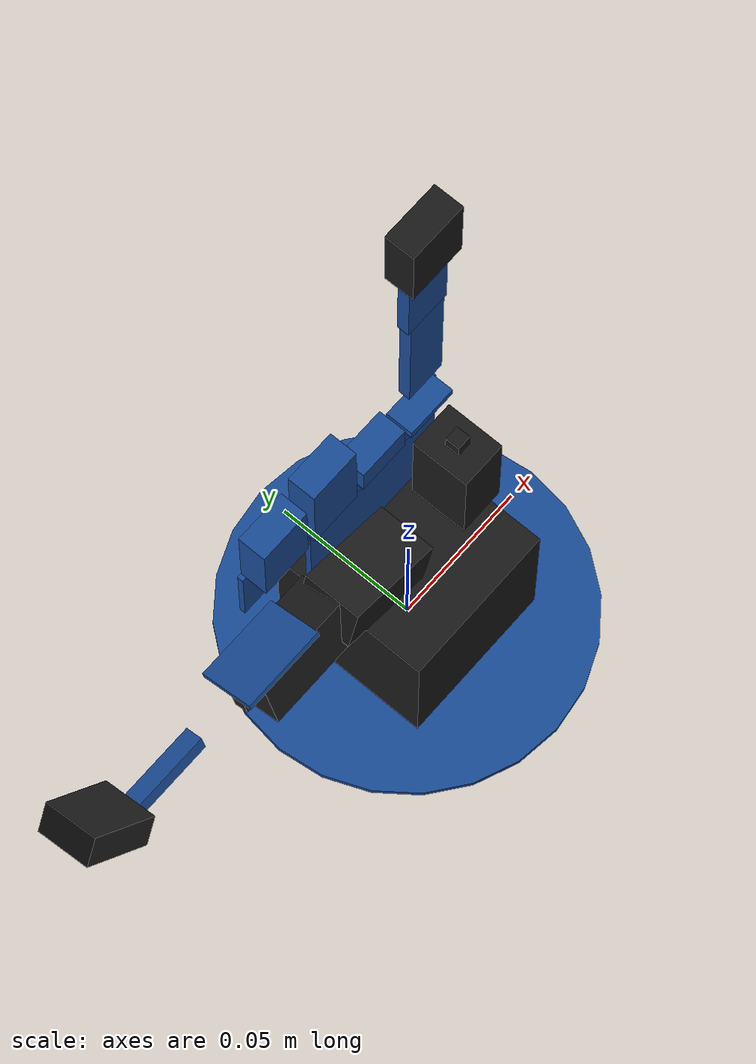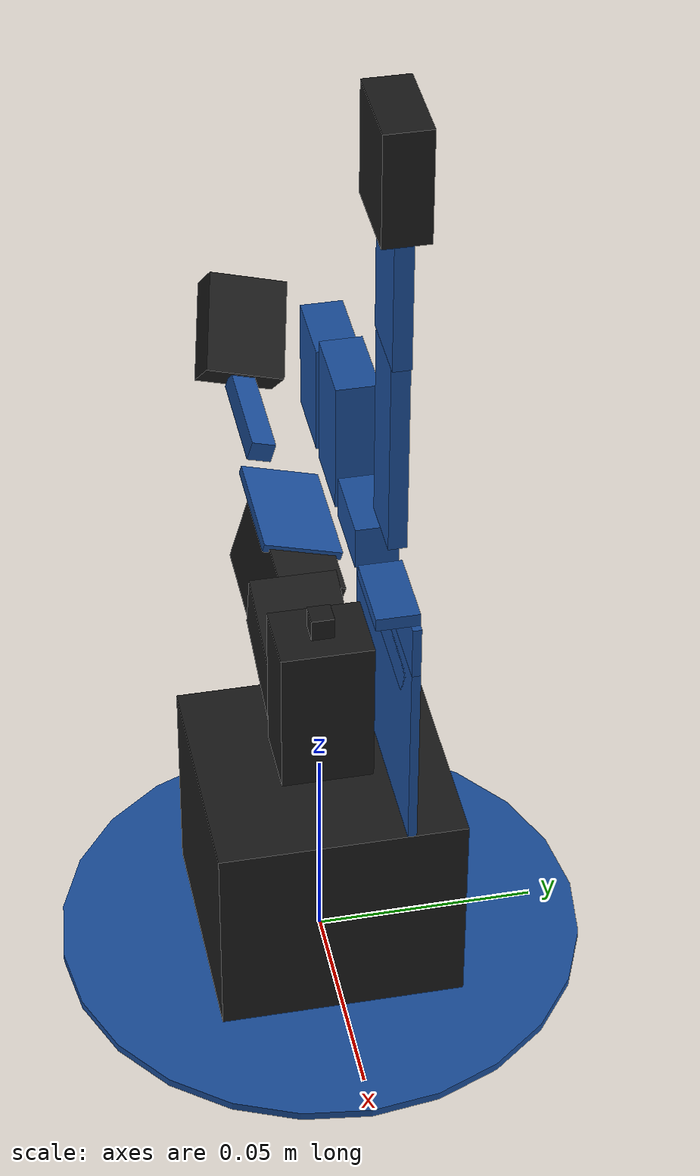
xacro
<?xml version="1.0"?>

<robot xmlns:xacro="http://www.ros.org/wiki/xacro" name="ar10">
<!--robot name="ar10"> -->

<!--****************WRIST PLATE************************* -->
  <xacro:property name="wrist_length" value=".002" />
  <xacro:property name="wrist_radius" value=".06" />
  <link name="wrist_plate">
    <visual>
      <geometry>
        <cylinder length="${wrist_length}" radius="${wrist_radius}"/>
      </geometry>
      <material name="blue">
        <color rgba=".1 .3 .6 1"/>
      </material>
    </visual>
    <collision>
      <geometry>
        <cylinder length="${wrist_length}" radius="${wrist_radius}"/>
      </geometry>
    </collision>
  </link>

<!--****************CIRCUIT BOARD*************************-->
  <xacro:property name="circuit_support_x" value=".0555" />
  <xacro:property name="circuit_support_y" value=".0555" />
  <xacro:property name="circuit_support_z" value=".05" />
  <link name="circuit_support">
    <visual>
      <geometry>
        <box size="${circuit_support_x} ${circuit_support_y} ${circuit_support_z}"/>
      </geometry>
      <origin xyz="0 0 0"/>
      <material name="black">
        <color rgba=".1 .1 .1 1"/>
      </material>
    </visual>
    <collision>
      <geometry>
        <box size="${circuit_support_x} ${circuit_support_y} ${circuit_support_z}"/>
      </geometry>
    </collision>
    <inertial>
      <mass value="1"/>
      <inertia ixx="0.4" ixy="0.0" ixz="0.0" iyy="0.4" iyz="0.0" izz="0.2"/>
    </inertial>
  </link>

  <joint name="wrist_plate_to_circuit_support" type="fixed">
    <parent link="wrist_plate"/>
    <child link="circuit_support"/>
    <origin xyz="0 0 .026"/>
  </joint>
<!--****************PALM*************************-->
  <xacro:property name="palm1_x" value=".0555" />
  <xacro:property name="palm1_y" value=".002" />
  <xacro:property name="palm1_z" value=".0463" /> define palm1 parameters
  <xacro:property name="palm2_x" value=".084" />
  <xacro:property name="palm2_y" value=".002" />
  <xacro:property name="palm2_z" value=".025" /> define palm2 parameters
  <xacro:property name="knuckle1_x" value=".018" />
  <xacro:property name="knuckle1_y" value=".0095" />
  <xacro:property name="knuckle1_z" value=".003" /> define knuckle 1 parameters
  <xacro:property name="knuckle2_x" value=".018" />
  <xacro:property name="knuckle2_y" value=".0095" />
  <xacro:property name="knuckle2_z" value=".01" /> define knuckle 2 parameters
  <xacro:property name="knuckle3_x" value=".018" />
  <xacro:property name="knuckle3_y" value=".0095" />
  <xacro:property name="knuckle3_z" value=".031" /> define knuckle 3 parameters
  <xacro:property name="knuckle4_x" value=".018" />
  <xacro:property name="knuckle4_y" value=".0095" />
  <xacro:property name="knuckle4_z" value=".026" /> define knuckle 4 parameters

  <link name="palm1">
    <visual>
      <geometry>
        <box size="${palm1_x} ${palm1_y} ${palm1_z}"/>
      </geometry>
      <origin xyz="0 0 0"/>
      <material name="blue">
      </material>
    </visual>
    <collision>
      <geometry>
        <box size="${palm1_x} ${palm1_y} ${palm1_z}"/>
      </geometry>
    </collision>
    <inertial>
      <mass value="1"/>
      <inertia ixx="0.4" ixy="0.0" ixz="0.0" iyy="0.4" iyz="0.0" izz="0.2"/>
    </inertial>
  </link>

  <joint name="circuit_support_to_palm1" type="fixed">
    <parent link="circuit_support"/>
    <child link="palm1"/>
    <origin xyz="0 .015 .04815"/>
  </joint>

  <link name="palm2">
    <visual>
      <geometry>
        <box size="${palm2_x} ${palm2_y} ${palm2_z}"/>
      </geometry>
      <origin xyz="0 0 0"/>
      <material name="blue">
      </material>
    </visual>
    <collision>
      <geometry>
        <box size="${palm2_x} ${palm2_y} ${palm2_z}"/>
      </geometry>
    </collision>
    <inertial>
      <mass value="1"/>
      <inertia ixx="0.4" ixy="0.0" ixz="0.0" iyy="0.4" iyz="0.0" izz="0.2"/>
    </inertial>
  </link>

  <joint name="palm1_to_palm2" type="fixed">
    <parent link="palm1"/>
    <child link="palm2"/>
    <origin xyz="-.01425 0 .02315"/>
  </joint>

  <link name="knuckle1">
    <visual>
      <geometry>
        <box size="${knuckle1_x} ${knuckle1_y} ${knuckle1_z}"/>
      </geometry>
      <origin xyz="0 0 0"/>
      <material name="blue">
      </material>
    </visual>
    <collision>
      <geometry>
        <box size="${knuckle1_x} ${knuckle1_y} ${knuckle1_z}"/>
      </geometry>
    </collision>
    <inertial>
      <mass value="1"/>
      <inertia ixx="0.4" ixy="0.0" ixz="0.0" iyy="0.4" iyz="0.0" izz="0.2"/>
    </inertial>
  </link>

  <joint name="palm2_to_knuckle1" type="fixed">
    <parent link="palm2"/>
    <child link="knuckle1"/>
    <origin xyz="0.0315 -.00375 .014"/>
  </joint>

  <link name="knuckle2">
    <visual>
      <geometry>
        <box size="${knuckle2_x} ${knuckle2_y} ${knuckle2_z}"/>
      </geometry>
      <origin xyz="0 0 0"/>
      <material name="blue">
      </material>
    </visual>
    <collision>
      <geometry>
        <box size="${knuckle2_x} ${knuckle2_y} ${knuckle2_z}"/>
      </geometry>
    </collision>
    <inertial>
      <mass value="1"/>
      <inertia ixx="0.4" ixy="0.0" ixz="0.0" iyy="0.4" iyz="0.0" izz="0.2"/>
    </inertial>
  </link>

  <joint name="palm2_to_knuckle2" type="fixed">
    <parent link="palm2"/>
    <child link="knuckle2"/>
    <origin xyz="0.0105 -.00375 .0175"/>
  </joint>

  <link name="knuckle3">
    <visual>
      <geometry>
        <box size="${knuckle3_x} ${knuckle3_y} ${knuckle3_z}"/>
      </geometry>
      <origin xyz="0 0 0"/>
      <material name="blue">
      </material>
    </visual>
    <collision>
      <geometry>
        <box size="${knuckle3_x} ${knuckle3_y} ${knuckle3_z}"/>
      </geometry>
    </collision>
    <inertial>
      <mass value="1"/>
      <inertia ixx="0.4" ixy="0.0" ixz="0.0" iyy="0.4" iyz="0.0" izz="0.2"/>
    </inertial>
  </link>

  <joint name="palm2_to_knuckle3" type="fixed">
    <parent link="palm2"/>
    <child link="knuckle3"/>
    <origin xyz="-.0105 -.00375 0.028"/>
  </joint>

  <link name="knuckle4">
    <visual>
      <geometry>
        <box size="${knuckle4_x} ${knuckle4_y} ${knuckle4_z}"/>
      </geometry>
      <origin xyz="0 0 0"/>
      <material name="blue">
      </material>
    </visual>
    <collision>
      <geometry>
        <box size="${knuckle4_x} ${knuckle4_y} ${knuckle4_z}"/>
      </geometry>
    </collision>
    <inertial>
      <mass value="1"/>
      <inertia ixx="0.4" ixy="0.0" ixz="0.0" iyy="0.4" iyz="0.0" izz="0.2"/>
    </inertial>
  </link>

  <joint name="palm2_to_knuckle4" type="fixed">
    <parent link="palm2"/>
    <child link="knuckle4"/>
    <origin xyz="-.0315 -.00375 .0255"/>
  </joint>
<!--****************FINGERS*************************-->
  <xacro:property name="fingera_x" value=".014" />
  <xacro:property name="fingera_y" value=".004" />
  <xacro:property name="fingera_z" value=".045" />
  <xacro:property name="fingerb_x" value=".016" />
  <xacro:property name="fingerb_y" value=".004" />
  <xacro:property name="fingerb_z" value=".03" />
  <xacro:property name="fingerc_x" value=".02" />
  <xacro:property name="fingerc_y" value=".01" />
  <xacro:property name="fingerc_z" value=".025" /> define fingers

  <link name="finger1a">
    <visual>
      <geometry>
        <box size="${fingera_x} ${fingera_y} ${fingera_z}"/>
      </geometry>
      <origin xyz="0 0 ${fingera_z/2}"/>
      <material name="blue">
      </material>
    </visual>
    <collision>
      <geometry>
        <box size="${fingera_x} ${fingera_y} ${fingera_z}"/>
      </geometry>
      <origin xyz="0 0 ${fingera_z/2}"/>
    </collision>
    <inertial>
      <mass value="1"/>
      <inertia ixx="0.4" ixy="0.0" ixz="0.0" iyy="0.4" iyz="0.0" izz="0.2"/>
    </inertial>
  </link>

  <joint name="knuckle1_to_finger1a" type="revolute">
    <axis xyz="-1 0 0"/>
    <limit effort="1000.0" lower="0.0" upper="1.5" velocity="0.5"/>
    <parent link="knuckle1"/>
    <child link="finger1a"/>
    <origin xyz="0 0 .018"/>
    <joint_properties damping="1.0" friction="0.0"/>
    <mimic joint="pris2" multiplier="79.93" offset="0.29" />
  </joint>

  <link name="finger1b">
    <visual>
      <geometry>
        <box size="${fingerb_x} ${fingerb_y} ${fingerb_z}"/>
      </geometry>
      <origin xyz="0 0 ${fingerb_z/2}"/>
      <material name="blue">
      </material>
    </visual>
    <collision>
      <geometry>
        <box size="${fingerb_x} ${fingerb_y} ${fingerb_z}"/>
      </geometry>
      <origin xyz="0 0 ${fingerb_z/2}"/>
    </collision>
    <inertial>
      <mass value="1"/>
      <inertia ixx="0.4" ixy="0.0" ixz="0.0" iyy="0.4" iyz="0.0" izz="0.2"/>
    </inertial>
  </link>

  <joint name="finger1a_to_finger1b" type="revolute">
    <axis xyz="-1 0 0"/>
    <limit effort="1000.0" lower="0.0" upper="1.5" velocity="0.5"/>
    <parent link="finger1a"/>
    <child link="finger1b"/>
    <origin xyz="0 0 ${fingera_z}"/>
    <mimic joint="pris2" multiplier="79.64" offset="0.29" />
    <joint_properties damping="1.0" friction="0.0"/>
  </joint>

  <link name="finger1c">
    <visual>
      <geometry>
        <box size="${fingerc_x} ${fingerc_y} ${fingerc_z}"/>
      </geometry>
      <origin xyz="0 0 ${fingerc_z/2}"/>
      <material name="black">
      </material>
    </visual>
    <collision>
      <geometry>
        <box size="${fingerc_x} ${fingerc_y} ${fingerc_z}"/>
      </geometry>
      <origin xyz="0 0 ${fingerc_z/2}"/>
    </collision>
    <inertial>
      <mass value="1"/>
      <inertia ixx="0.4" ixy="0.0" ixz="0.0" iyy="0.4" iyz="0.0" izz="0.2"/>
    </inertial>
  </link>

  <joint name="finger1b_to_finger1c" type="revolute">
    <parent link="finger1b"/>
    <child link="finger1c"/>
    <origin xyz="0 0 ${fingerb_z}"/>
    <axis xyz="-1 0 0"/>
    <limit effort="1000.0" lower="0" upper="1.5" velocity="0.5"/>
    <mimic joint="pris2" multiplier="68.88" offset="0.16" />
  </joint>

<!--****************THUMB*************************-->
  <xacro:property name="thumb_x" value=".019" />
  <xacro:property name="thumb_y" value=".03" />
  <xacro:property name="thumb_z" value=".002" />
  <xacro:property name="thumb2_x" value=".006" />
  <xacro:property name="thumb2_y" value=".03" />
  <xacro:property name="thumb2_z" value=".005" />
  <xacro:property name="thumb_tip_x" value=".02" />
  <xacro:property name="thumb_tip_y" value=".025" />
  <xacro:property name="thumb_tip_z" value=".01" />

  <link name="thumb">
    <visual>
      <geometry>
        <box size="${thumb_x} ${thumb_y} ${thumb_z}"/>
      </geometry>
      <origin xyz="0 ${thumb_y/2} 0"/>
      <material name="blue">
      </material>
    </visual>
    <collision>
      <geometry>
        <box size="${thumb_x} ${thumb_y} ${thumb_z}"/>
      </geometry>
      <origin xyz="0 ${thumb_y/2} 0"/>
    </collision>
    <inertial>
      <mass value="1"/>
      <inertia ixx="0.4" ixy="0.0" ixz="0.0" iyy="0.4" iyz="0.0" izz="0.2"/>
    </inertial>
  </link>

  <joint name="palm1_to_thumb" type="revolute">
    <axis xyz="0 0 -1"/>
    <limit effort="1000.0" lower="0" upper="1.5" velocity="0.5"/>
    <parent link="palm1"/>
    <child link="thumb"/>
    <origin xyz="-.045 -.01 0" rpy=" 0 0.279 1.57 "/>
    <joint_properties damping="1.0" friction="0.0"/>
    <mimic joint="pris0" multiplier="83.5" offset="0.62" />
  </joint>

  <link name="thumb2">
    <visual>
      <geometry>
        <box size="${thumb2_x} ${thumb2_y} ${thumb2_z}"/>
      </geometry>
      <origin xyz="0 .015 0"/>
      <material name="blue">
      </material>
    </visual>
    <collision>
      <geometry>
        <box size="${thumb2_x} ${thumb2_y} ${thumb2_z}"/>
      </geometry>
      <origin xyz="0 .015 0"/>
    </collision>
    <inertial>
      <mass value="1"/>
      <inertia ixx="0.4" ixy="0.0" ixz="0.0" iyy="0.4" iyz="0.0" izz="0.2"/>
    </inertial>
  </link>

  <joint name="thumb_to_thumb2" type="revolute">
    <axis xyz="1 0 0"/>
    <limit effort="1000.0" lower="0.0" upper="1.5" velocity="0.5"/>
    <parent link="thumb"/>
    <child link="thumb2"/>
    <origin xyz="0 0.045 -.005"/>
    <joint_properties damping="1.0" friction="0.0"/>
    <mimic joint="pris1" multiplier="56.5" offset="0.63" />
  </joint>

  <link name="thumb_tip">
    <visual>
      <geometry>
        <box size="${thumb_tip_x} ${thumb_tip_y} ${thumb_tip_z}"/>
      </geometry>
      <origin xyz="0 .0125 0"/>
      <material name="black">
      </material>
    </visual>
    <collision>
      <geometry>
        <box size="${thumb_tip_x} ${thumb_tip_y} ${thumb_tip_z}"/>
      </geometry>
      <origin xyz="0 .0125 0"/>
    </collision>
    <inertial>
      <mass value="1"/>
      <inertia ixx="0.4" ixy="0.0" ixz="0.0" iyy="0.4" iyz="0.0" izz="0.2"/>
    </inertial>
  </link>

  <joint name="thumb2_to_thumb_tip" type="fixed">
    <axis xyz="1 0 0"/>
    <parent link="thumb2"/>
    <child link="thumb_tip"/>
    <origin xyz="0 0.03 0" rpy = "0.698 0 0"/>
  </joint>
<!--********************MOTORS****************************-->
  <xacro:property name="motor_x" value=".016" />
  <xacro:property name="motor_y" value=".035" />
  <xacro:property name="motor_z" value=".02" />
  <xacro:property name="pris_x" value=".005" />
  <xacro:property name="pris_y" value=".005" />
  <xacro:property name="pris_z" value=".025" />
    <link name="motor0">
    <visual>
      <geometry>
        <box size="${motor_x} ${motor_y} ${motor_z}"/>
      </geometry>
      <origin xyz="0 .02 0"/>
      <material name="black">
      </material>
    </visual>
    <collision>
      <geometry>
        <box size="${motor_x} ${motor_y} ${motor_z}"/>
      </geometry>
      <origin xyz="0 .02 0"/>
    </collision>
    <inertial>
      <mass value="1"/>
      <inertia ixx="0.4" ixy="0.0" ixz="0.0" iyy="0.4" iyz="0.0" izz="0.2"/>
    </inertial>
  </link>

  <joint name="palm1_to_motor0" type="fixed">
    <axis xyz="1 0 0"/>
    <parent link="palm1"/>
    <child link="motor0"/>
    <origin xyz="0 -.0145 -.015" rpy = "1.57 ${0.279-(3.147/2)} 0"/>
  </joint>

  <link name="pris0">
    <visual>
      <geometry>
        <box size="${pris_x} ${pris_y} ${pris_z}"/>
      </geometry>
      <origin xyz="0 0 0"/>
      <material name="black">
      </material>
    </visual>
    <inertial>
      <mass value="1"/>
      <inertia ixx="0.4" ixy="0.0" ixz="0.0" iyy="0.4" iyz="0.0" izz="0.2"/>
    </inertial>
  </link>

  <joint name="pris0" type="prismatic">
    <axis xyz="0 0 -1"/>
    <limit effort="1000.0" lower="0.0" upper="0.02" velocity="0.1"/>
    <parent link="motor0"/>
    <child link="pris0"/>
    <origin xyz="0 .03 0" rpy = "1.57 0 0"/>
  </joint>

  <link name="motor1">
    <visual>
      <geometry>
        <box size="${motor_x} ${motor_y} ${motor_z}"/>
      </geometry>
      <origin xyz="0 .02 0"/>
      <material name="black">
      </material>
    </visual>
    <collision>
      <geometry>
        <box size="${motor_x} ${motor_y} ${motor_z}"/>
      </geometry>
      <origin xyz="0 .02 0"/>
    </collision>
    <inertial>
      <mass value="1"/>
      <inertia ixx="0.4" ixy="0.0" ixz="0.0" iyy="0.4" iyz="0.0" izz="0.2"/>
    </inertial>
  </link>

  <joint name="thumb_to_motor1" type="fixed">
    <axis xyz="1 0 0"/>
    <parent link="thumb"/>
    <child link="motor1"/>
    <origin xyz="0 -.0145 -.01" rpy = "0 0 0"/>
  </joint>

  <link name="pris1">
    <visual>
      <geometry>
        <box size="${pris_x} ${pris_y} ${pris_z}"/>
      </geometry>
      <origin xyz="0 0 0"/>
      <material name="black">
      </material>
    </visual>
    <inertial>
      <mass value="1"/>
      <inertia ixx="0.4" ixy="0.0" ixz="0.0" iyy="0.4" iyz="0.0" izz="0.2"/>
    </inertial>
  </link>

  <joint name="pris1" type="prismatic">
    <axis xyz="0 0 -1"/>
    <limit effort="1000.0" lower="0.0" upper="0.02" velocity="0.1"/>
    <parent link="motor1"/>
    <child link="pris1"/>
    <origin xyz="0 .03 0" rpy = "1.57 0 0"/>
  </joint>

  <link name="motor2">
    <visual>
      <geometry>
        <box size="${motor_x} ${motor_y} ${motor_z}"/>
      </geometry>
      <origin xyz="0 .02 0"/>
      <material name="black">
      </material>
    </visual>
    <collision>
      <geometry>
        <box size="${motor_x} ${motor_y} ${motor_z}"/>
      </geometry>
      <origin xyz="0 .02 0"/>
    </collision>
    <inertial>
      <mass value="1"/>
      <inertia ixx="0.4" ixy="0.0" ixz="0.0" iyy="0.4" iyz="0.0" izz="0.2"/>
    </inertial>
  </link>

  <joint name="knuckle1_to_motor2" type="fixed">
    <axis xyz="1 0 0"/>
    <parent link="knuckle1"/>
    <child link="motor2"/>
    <origin xyz="0 -.0145 -.045" rpy = "1.57 0 0"/>
  </joint>

  <link name="pris2">
    <visual>
      <geometry>
        <box size="${pris_x} ${pris_y} ${pris_z}"/>
      </geometry>
      <origin xyz="0 0 0"/>
      <material name="black">
      </material>
    </visual>
    <inertial>
      <mass value="1"/>
      <inertia ixx="0.4" ixy="0.0" ixz="0.0" iyy="0.4" iyz="0.0" izz="0.2"/>
    </inertial>
  </link>

  <joint name="pris2" type="prismatic">
    <axis xyz="0 0 -1"/>
    <limit effort="1000.0" lower="0.0" upper="0.02" velocity="0.1"/>
    <parent link="motor2"/>
    <child link="pris2"/>
    <origin xyz="0 .03 0" rpy = "1.57 0 0"/>
  </joint>

</robot>
